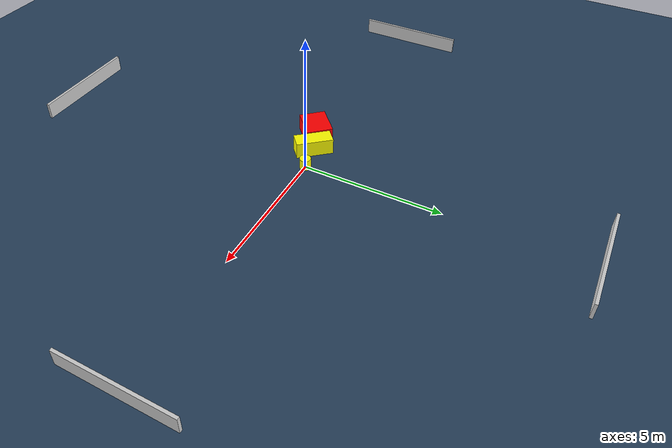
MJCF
<?xml version="1.0" ?>
<mujoco model="generated_environment">
  <option timestep="0.01" integrator="RK4" cone="elliptic"/>
  <default>
    <geom density="1"/>
  </default>
  <asset>
    <texture builtin="gradient" height="3072" name="skybox" rgb1="0.3 0.5 0.7" rgb2="0 0 0" type="skybox" width="512"/>
    <texture builtin="checker" height="300" name="groundplane" rgb1="0.2 0.3 0.4" rgb2="0.1 0.2 0.3" type="2d" width="300"/>
    <material name="groundplane" reflectance="0.2" texrepeat="5 5" texture="groundplane"/>
  </asset>
  <worldbody>
    <light dir="0 0 -1" directional="true" pos="0 0 1.5"/>
    <geom condim="3" friction="0.5 0.005 0.001" material="groundplane" name="floor" pos="0 0 0" size="0 0 0.05" type="plane"/>
    <body name="walls">
      <geom name="wall_1" condim="4" pos="-10.0 0.0 0.3" rgba="0.800000011920929 0.800000011920929 0.800000011920929 1.0" size="0.05 2.0 0.3" type="box"/>
      <geom name="wall_2" condim="4" pos="10.0 0.0 0.3" rgba="0.800000011920929 0.800000011920929 0.800000011920929 1.0" size="0.05 2.0 0.3" type="box"/>
      <geom name="wall_3" condim="4" pos="0.0 -10.0 0.3" rgba="0.800000011920929 0.800000011920929 0.800000011920929 1.0" size="2.0 0.05 0.3" type="box"/>
      <geom name="wall_4" condim="4" pos="0.0 10.0 0.3" rgba="0.800000011920929 0.800000011920929 0.800000011920929 1.0" size="2.0 0.05 0.3" type="box"/>
    </body>
    <body name="robot">
      <joint name="joint_x" type="slide" pos="0 0 0" axis="1 0 0"/>
      <joint name="joint_y" type="slide" pos="0 0 0" axis="0 1 0"/>
      <geom name="robot" type="cylinder" pos="0.0 0.0 0.2" size="0.2 0.2 0.0" mass="5.0" friction="1.0 0.005 0.0001" condim="4" rgba="1.0 1.0 0.0 1.0"/>
    </body>
    <body name="obstacle_1_movable">
      <geom name="obstacle_1_movable" condim="4" pos="-0.9397979487261116 -0.1734747364772223 0.3" euler="0 0 130.66601259626972" friction="0.0 0.005 0.001" rgba="1.0 1.0 0.0 1.0" size="0.6653744774606654 0.2799240876880907 0.3" type="box" mass="0.1"/>
      <joint type="free"/>
    </body>
    <body name="obstacle_2_static">
      <geom name="obstacle_2_static" condim="4" pos="-1.8228283936419214 -0.528329544183614 0.3" euler="0 0 42.31650734789266" friction="0.0 0.005 0.001" rgba="1.0 0.0 0.0 1.0" size="0.5673778304853503 0.4805716530188699 0.3" type="box"/>
    </body>
  </worldbody>
  <actuator>
    <motor name="actuator_x" joint="joint_x" gear="1" ctrlrange="-1 1"/>
    <motor name="actuator_y" joint="joint_y" gear="1" ctrlrange="-1 1"/>
  </actuator>
</mujoco>
